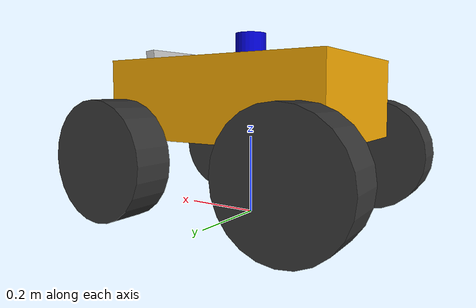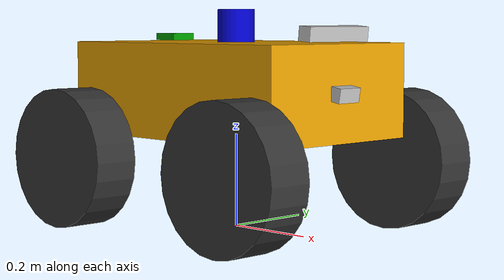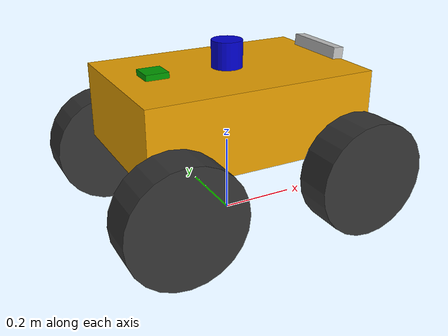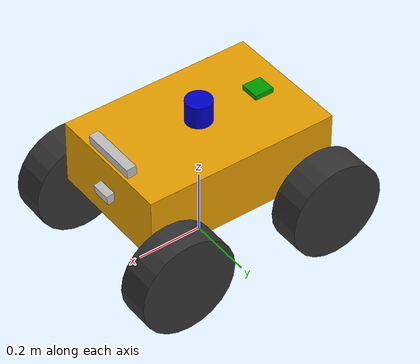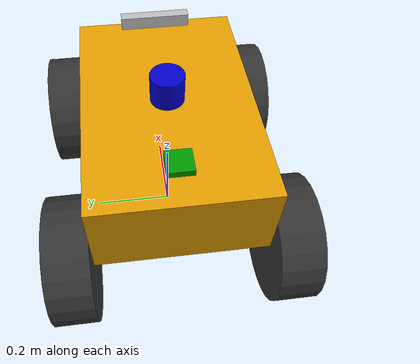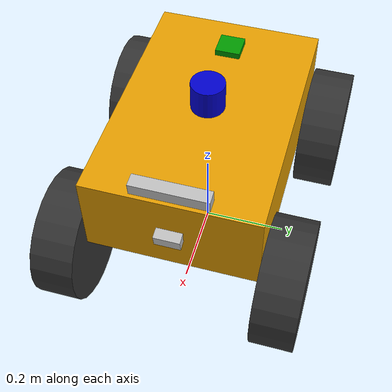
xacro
<?xml version="1.0"?>
<robot name="TARS" xmlns:xacro="http://www.ros.org/wiki/xacro">

  <!-- ================= BASE LINK ================= -->
  <link name="base_link">
    <inertial>
      <mass value="2.0"/>
      <origin xyz="0 0 0.30"/>
      <inertia ixx="0.0333" ixy="0" ixz="0"
               iyy="0.0667" iyz="0"
               izz="0.0867"/>
    </inertial>
    <visual>
      <origin xyz="0 0 0.30"/>
      <geometry>
        <box size="0.6 0.4 0.2"/>
      </geometry>
    </visual>
    <collision>
      <origin xyz="0 0 0.30"/>
      <geometry>
        <box size="0.6 0.4 0.2"/>
      </geometry>
    </collision>
  </link>

  <!-- ================= WHEEL LINKS ================= -->

  <!-- FRONT LEFT -->
  <link name="front_left_wheel">
    <inertial>
      <mass value="0.5"/>
      <origin xyz="0 0 0"/>
      <inertia ixx="0.00292" ixy="0" ixz="0"
               iyy="0.00292" iyz="0"
               izz="0.00563"/>
    </inertial>
    <visual>
      <origin rpy="1.57 0 0"/>
      <geometry>
        <cylinder radius="0.15" length="0.1"/>
      </geometry>
      <material name="darkgrey">
        <color rgba="0.2 0.2 0.2 1"/>
      </material>
    </visual>
    <collision>
      <origin rpy="1.57 0 0"/>
      <geometry>
        <cylinder radius="0.15" length="0.1"/>
      </geometry>
    </collision>
  </link>

  <!-- FRONT RIGHT -->
  <link name="front_right_wheel">
    <inertial>
      <mass value="0.5"/>
      <origin xyz="0 0 0"/>
      <inertia ixx="0.00292" ixy="0" ixz="0"
               iyy="0.00292" iyz="0"
               izz="0.00563"/>
    </inertial>
    <visual>
      <origin rpy="1.57 0 0"/>
      <geometry>
        <cylinder radius="0.15" length="0.1"/>
      </geometry>
      <material name="darkgrey">
        <color rgba="0.2 0.2 0.2 1"/>
      </material>
    </visual>
    <collision>
      <origin rpy="1.57 0 0"/>
      <geometry>
        <cylinder radius="0.15" length="0.1"/>
      </geometry>
    </collision>
  </link>

  <!-- REAR LEFT -->
  <link name="rear_left_wheel">
    <inertial>
      <mass value="0.5"/>
      <origin xyz="0 0 0"/>
      <inertia ixx="0.00292" ixy="0" ixz="0"
               iyy="0.00292" iyz="0"
               izz="0.00563"/>
    </inertial>
    <visual>
      <origin rpy="1.57 0 0"/>
      <geometry>
        <cylinder radius="0.15" length="0.1"/>
      </geometry>
      <material name="darkgrey">
        <color rgba="0.2 0.2 0.2 1"/>
      </material>
    </visual>
    <collision>
      <origin rpy="1.57 0 0"/>
      <geometry>
        <cylinder radius="0.15" length="0.1"/>
      </geometry>
    </collision>
  </link>

  <!-- REAR RIGHT -->
  <link name="rear_right_wheel">
    <inertial>
      <mass value="0.5"/>
      <origin xyz="0 0 0"/>
      <inertia ixx="0.00292" ixy="0" ixz="0"
               iyy="0.00292" iyz="0"
               izz="0.00563"/>
    </inertial>
    <visual>
      <origin rpy="1.57 0 0"/>
      <geometry>
        <cylinder radius="0.15" length="0.1"/>
      </geometry>
      <material name="darkgrey">
        <color rgba="0.2 0.2 0.2 1"/>
      </material>
    </visual>
    <collision>
      <origin rpy="1.57 0 0"/>
      <geometry>
        <cylinder radius="0.15" length="0.1"/>
      </geometry>
    </collision>
  </link>

  <!-- ================================================================
       SENSOR LINKS
  ================================================================ -->

  <link name="lidar_link">
    <inertial>
      <mass value="0.35"/>
      <origin xyz="0 0 0"/>
      <inertia ixx="0.001" ixy="0" ixz="0"
               iyy="0.001" iyz="0"
               izz="0.001"/>
    </inertial>
    <visual>
      <origin xyz="0 0 0"/>
      <geometry>
        <cylinder radius="0.04" length="0.07"/>
      </geometry>
      <material name="blue">
        <color rgba="0 0 0.8 1"/>
      </material>
    </visual>
    <collision>
      <origin xyz="0 0 0"/>
      <geometry>
        <cylinder radius="0.04" length="0.07"/>
      </geometry>
    </collision>
  </link>

  <link name="imu_link">
    <inertial>
      <mass value="0.05"/>
      <origin xyz="0 0 0"/>
      <inertia ixx="0.0001" ixy="0" ixz="0"
               iyy="0.0001" iyz="0"
               izz="0.0001"/>
    </inertial>
    <visual>
      <origin xyz="0 0 0"/>
      <geometry>
        <box size="0.04 0.04 0.01"/>
      </geometry>
      <material name="green">
        <color rgba="0 0.6 0 1"/>
      </material>
    </visual>
    <collision>
      <origin xyz="0 0 0"/>
      <geometry>
        <box size="0.04 0.04 0.01"/>
      </geometry>
    </collision>
  </link>

  <!-- ── GPS ────────────────────────────────────────────────────────
       Placed at rear-top of chassis for maximum open sky exposure
  ──────────────────────────────────────────────────────────────── -->

  <link name="gps_link">
    <inertial>
      <mass value="0.08"/>
      <origin xyz="0 0 0"/>
      <inertia ixx="0.0001" ixy="0" ixz="0"
               iyy="0.0001" iyz="0"
               izz="0.0001"/>
    </inertial>
    <visual>
      <origin xyz="0 0 0"/>
      <geometry>
        <box size="0.06 0.06 0.015"/>
      </geometry>
      <material name="green">
        <color rgba="0 0.6 0 1"/>
      </material>
    </visual>
    <collision>
      <origin xyz="0 0 0"/>
      <geometry>
        <box size="0.06 0.06 0.015"/>
      </geometry>
    </collision>
  </link>

  <link name="zed2_link">
    <inertial>
      <mass value="0.16"/>
      <origin xyz="0 0 0"/>
      <inertia ixx="0.0001" ixy="0" ixz="0"
               iyy="0.0001" iyz="0"
               izz="0.0001"/>
    </inertial>
    <visual>
      <origin xyz="0 0 0"/>
      <geometry>
        <box size="0.03 0.175 0.03"/>
      </geometry>
      <material name="silver">
        <color rgba="0.75 0.75 0.75 1"/>
      </material>
    </visual>
    <collision>
      <origin xyz="0 0 0"/>
      <geometry>
        <box size="0.03 0.175 0.03"/>
      </geometry>
    </collision>
  </link>

  <!-- ZED2 left lens (+Y, 60mm from centre) -->
  <link name="zed2_left_camera_link">
    <inertial>
      <mass value="0.01"/>
      <origin xyz="0 0 0"/>
      <inertia ixx="0.00001" ixy="0" ixz="0"
               iyy="0.00001" iyz="0"
               izz="0.00001"/>
    </inertial>
    <visual>
      <geometry><sphere radius="0.012"/></geometry>
      <material name="dark_blue">
        <color rgba="0 0 0.5 1"/>
      </material>
    </visual>
  </link>

  <!-- ZED2 right lens (-Y, 60mm from centre) -->
  <link name="zed2_right_camera_link">
    <inertial>
      <mass value="0.01"/>
      <origin xyz="0 0 0"/>
      <inertia ixx="0.00001" ixy="0" ixz="0"
               iyy="0.00001" iyz="0"
               izz="0.00001"/>
    </inertial>
    <visual>
      <geometry><sphere radius="0.012"/></geometry>
      <material name="dark_blue">
        <color rgba="0 0 0.5 1"/>
      </material>
    </visual>
  </link>

  <!-- ── Front Mono Camera ─────────────────────────────────────────
       Front bumper, mid-height, 10° nose-down
  ──────────────────────────────────────────────────────────────── -->

  <link name="front_camera_link">
    <inertial>
      <mass value="0.05"/>
      <origin xyz="0 0 0"/>
      <inertia ixx="0.0001" ixy="0" ixz="0"
               iyy="0.0001" iyz="0"
               izz="0.0001"/>
    </inertial>
    <visual>
      <origin xyz="0 0 0"/>
      <geometry>
        <box size="0.025 0.06 0.03"/>
      </geometry>
      <material name="silver">
        <color rgba="0.75 0.75 0.75 1"/>
      </material>
    </visual>
    <collision>
      <origin xyz="0 0 0"/>
      <geometry>
        <box size="0.025 0.06 0.03"/>
      </geometry>
    </collision>
  </link>

  <!-- ================================================================
       WHEEL JOINTS
  ================================================================ -->

  <joint name="front_left_wheel_joint" type="continuous">
    <parent link="base_link"/>
    <child  link="front_left_wheel"/>
    <origin xyz="0.25 0.251 0.15"/>
    <axis xyz="0 1 0"/>
    <dynamics damping="1.0" friction="0.5"/>
    <limit effort="50" velocity="50"/>
  </joint>

  <joint name="front_right_wheel_joint" type="continuous">
    <parent link="base_link"/>
    <child  link="front_right_wheel"/>
    <origin xyz="0.25 -0.251 0.15"/>
    <axis xyz="0 1 0"/>
    <dynamics damping="1.0" friction="0.5"/>
    <limit effort="50" velocity="50"/>
  </joint>

  <joint name="rear_left_wheel_joint" type="continuous">
    <parent link="base_link"/>
    <child  link="rear_left_wheel"/>
    <origin xyz="-0.25 0.251 0.15"/>
    <axis xyz="0 1 0"/>
    <dynamics damping="1.0" friction="0.5"/>
    <limit effort="50" velocity="50"/>
  </joint>

  <joint name="rear_right_wheel_joint" type="continuous">
    <parent link="base_link"/>
    <child  link="rear_right_wheel"/>
    <origin xyz="-0.25 -0.251 0.15"/>
    <axis xyz="0 1 0"/>
    <dynamics damping="1.0" friction="0.5"/>
    <limit effort="50" velocity="50"/>
  </joint>

  <!-- ================================================================
       SENSOR JOINTS  (all fixed — sensors don't move)
  ================================================================ -->

  <!-- LiDAR: top-centre, sits 0.035 above chassis top (half cylinder height) -->

  <joint name="lidar_joint" type="fixed">
    <parent link="base_link"/>
    <child  link="lidar_link"/>
    <origin xyz="0 0 0.435" rpy="0 0 0"/>
  </joint>

  <!-- IMU: chassis centre height — closest to CoM, minimises vibration -->

  <joint name="imu_joint" type="fixed">
    <parent link="base_link"/>
    <child  link="imu_link"/>
    <origin xyz="0 0 0.30" rpy="0 0 0"/>
  </joint>

  <!-- GPS: rear-top of chassis — maximum sky exposure away from electronics -->

  <joint name="gps_joint" type="fixed">
    <parent link="base_link"/>
    <child  link="gps_link"/>
    <origin xyz="-0.20 0 0.41" rpy="0 0 0"/>
  </joint>

  <!-- ZED2 housing: front-top, 5° nose-down for near-ground depth coverage -->

  <joint name="zed2_joint" type="fixed">
    <parent link="base_link"/>
    <child  link="zed2_link"/>
    <origin xyz="0.28 0 0.42" rpy="0 0.087 0"/>
  </joint>

  <!-- ZED2 left lens: +60mm in Y from ZED2 housing centre -->

  <joint name="zed2_left_camera_joint" type="fixed">
    <parent link="zed2_link"/>
    <child  link="zed2_left_camera_link"/>
    <origin xyz="0 0.06 0" rpy="0 0 0"/>
  </joint>

  <!-- ZED2 right lens: -60mm in Y from ZED2 housing centre -->

  <joint name="zed2_right_camera_joint" type="fixed">
    <parent link="zed2_link"/>
    <child  link="zed2_right_camera_link"/>
    <origin xyz="0 -0.06 0" rpy="0 0 0"/>
  </joint>

  <!-- Front camera: front face, mid chassis height, 10° nose-down -->

  <joint name="front_camera_joint" type="fixed">
    <parent link="base_link"/>
    <child  link="front_camera_link"/>
    <origin xyz="0.31 0 0.30" rpy="0 0.1745 0"/>
  </joint>

  <!-- ================================================================
       GAZEBO — WHEEL COLOURS
  ================================================================ -->

  <gazebo reference="front_left_wheel">
    <material>Gazebo/Grey</material>
  </gazebo>
  <gazebo reference="front_right_wheel">
    <material>Gazebo/Grey</material>
  </gazebo>
  <gazebo reference="rear_left_wheel">
    <material>Gazebo/Grey</material>
  </gazebo>
  <gazebo reference="rear_right_wheel">
    <material>Gazebo/Grey</material>
  </gazebo>

  <!-- ================================================================
       GAZEBO — WHEEL FRICTION / CONTACT
  ================================================================ -->

  <gazebo reference="front_left_wheel">
    <collision>
      <surface>
        <friction>
          <ode><mu1>1.0</mu1><mu2>1.0</mu2></ode>
        </friction>
        <contact>
          <ode>
            <kp>100000.0</kp><kd>10.0</kd>
            <min_depth>0.001</min_depth><max_vel>0.1</max_vel>
          </ode>
        </contact>
      </surface>
    </collision>
  </gazebo>

  <gazebo reference="front_right_wheel">
    <collision>
      <surface>
        <friction>
          <ode><mu1>1.0</mu1><mu2>1.0</mu2></ode>
        </friction>
        <contact>
          <ode>
            <kp>100000.0</kp><kd>10.0</kd>
            <min_depth>0.001</min_depth><max_vel>0.1</max_vel>
          </ode>
        </contact>
      </surface>
    </collision>
  </gazebo>

  <gazebo reference="rear_left_wheel">
    <collision>
      <surface>
        <friction>
          <ode><mu1>1.0</mu1><mu2>1.0</mu2></ode>
        </friction>
        <contact>
          <ode>
            <kp>100000.0</kp><kd>10.0</kd>
            <min_depth>0.001</min_depth><max_vel>0.1</max_vel>
          </ode>
        </contact>
      </surface>
    </collision>
  </gazebo>

  <gazebo reference="rear_right_wheel">
    <collision>
      <surface>
        <friction>
          <ode><mu1>1.0</mu1><mu2>1.0</mu2></ode>
        </friction>
        <contact>
          <ode>
            <kp>100000.0</kp><kd>10.0</kd>
            <min_depth>0.001</min_depth><max_vel>0.1</max_vel>
          </ode>
        </contact>
      </surface>
    </collision>
  </gazebo>

  <gazebo reference="lidar_link">
    <sensor type="ray" name="lidar_sensor">
      <pose>0 0 0 0 0 0</pose>
      <visualize>false</visualize>
      <always_on>true</always_on>
      <update_rate>15</update_rate>
      <ray>
        <scan>
          <horizontal>
            <samples>720</samples>
            <resolution>1</resolution>
            <min_angle>-3.14159</min_angle>
            <max_angle>3.14159</max_angle>
          </horizontal>
        </scan>
        <range>
          <min>0.10</min>
          <max>30.0</max>
          <resolution>0.01</resolution>
        </range>
        <noise>
          <type>gaussian</type>
          <mean>0.0</mean>
          <stddev>0.01</stddev>
        </noise>
      </ray>
      <plugin name="lidar_plugin" filename="libgazebo_ros_laser.so">
        <topicName>/scan</topicName>
        <frameName>lidar_link</frameName>
      </plugin>
    </sensor>
    <material>Gazebo/Blue</material>
  </gazebo>

  <!-- ================================================================
       GAZEBO — IMU PLUGIN
       200 Hz → /imu/data
  ================================================================ -->

  <gazebo reference="imu_link">
    <gravity>true</gravity>
    <sensor name="imu_sensor" type="imu">
      <always_on>true</always_on>
      <update_rate>200</update_rate>
      <visualize>true</visualize>
      <imu>
        <angular_velocity>
          <x><noise type="gaussian"><mean>0.0</mean><stddev>0.009</stddev></noise></x>
          <y><noise type="gaussian"><mean>0.0</mean><stddev>0.009</stddev></noise></y>
          <z><noise type="gaussian"><mean>0.0</mean><stddev>0.009</stddev></noise></z>
        </angular_velocity>
        <linear_acceleration>
          <x><noise type="gaussian"><mean>0.0</mean><stddev>0.021</stddev></noise></x>
          <y><noise type="gaussian"><mean>0.0</mean><stddev>0.021</stddev></noise></y>
          <z><noise type="gaussian"><mean>0.0</mean><stddev>0.021</stddev></noise></z>
        </linear_acceleration>
      </imu>
      <plugin filename="libgazebo_ros_imu_sensor.so" name="imu_plugin">
        <topicName>/imu/data</topicName>
        <bodyName>imu_link</bodyName>
        <updateRateHZ>200.0</updateRateHZ>
        <frameName>imu_link</frameName>
        <initialOrientationAsReference>false</initialOrientationAsReference>
      </plugin>
    </sensor>
    <material>Gazebo/Green</material>
  </gazebo>

  <!-- ================================================================
       GAZEBO — GPS PLUGIN
       10 Hz → /gps/fix
  ================================================================ -->

  <gazebo reference="gps_link">
    <sensor type="gps" name="gps_sensor">
      <always_on>true</always_on>
      <update_rate>10</update_rate>
      <gps>
        <position_sensing>
          <horizontal>
            <noise type="gaussian"><mean>0.0</mean><stddev>0.5</stddev></noise>
          </horizontal>
          <vertical>
            <noise type="gaussian"><mean>0.0</mean><stddev>1.0</stddev></noise>
          </vertical>
        </position_sensing>
      </gps>
      <plugin name="gps_plugin" filename="libgazebo_ros_gps_sensor.so">
        <robotNamespace>/</robotNamespace>
        <topicName>/gps/fix</topicName>
        <velocityTopicName>/gps/vel</velocityTopicName>
        <frameName>gps_link</frameName>
        <referenceLatitude>12.9716</referenceLatitude>
        <referenceLongitude>77.5946</referenceLongitude>
        <referenceAltitude>920.0</referenceAltitude>
      </plugin>
    </sensor>
    <material>Gazebo/Green</material>
  </gazebo>

  <gazebo reference="zed2_left_camera_link">
    <sensor type="camera" name="zed2_left">
      <always_on>true</always_on>
      <update_rate>30</update_rate>
      <visualize>false</visualize>
      <camera name="left">
        <horizontal_fov>1.8</horizontal_fov>
        <image>
          <width>1280</width>
          <height>720</height>
          <format>R8G8B8</format>
        </image>
        <clip><near>0.02</near><far>300</far></clip>
        <noise>
          <type>gaussian</type><mean>0.0</mean><stddev>0.007</stddev>
        </noise>
      </camera>
      <plugin name="zed2_left_plugin" filename="libgazebo_ros_camera.so">
        <cameraName>zed2/left</cameraName>
        <imageTopicName>image_raw</imageTopicName>
        <cameraInfoTopicName>camera_info</cameraInfoTopicName>
        <frameName>zed2_left_camera_link</frameName>
        <hackBaseline>0.0</hackBaseline>
      </plugin>
    </sensor>
    <material>Gazebo/DarkGrey</material>
  </gazebo>

  <gazebo reference="zed2_right_camera_link">
    <sensor type="camera" name="zed2_right">
      <always_on>true</always_on>
      <update_rate>30</update_rate>
      <visualize>false</visualize>
      <camera name="right">
        <horizontal_fov>1.8</horizontal_fov>
        <image>
          <width>1280</width>
          <height>720</height>
          <format>R8G8B8</format>
        </image>
        <clip><near>0.02</near><far>300</far></clip>
        <noise>
          <type>gaussian</type><mean>0.0</mean><stddev>0.007</stddev>
        </noise>
      </camera>
      <plugin name="zed2_right_plugin" filename="libgazebo_ros_camera.so">
        <cameraName>zed2/right</cameraName>
        <imageTopicName>image_raw</imageTopicName>
        <cameraInfoTopicName>camera_info</cameraInfoTopicName>
        <frameName>zed2_right_camera_link</frameName>
        <hackBaseline>0.0</hackBaseline>
      </plugin>
    </sensor>
    <material>Gazebo/DarkGrey</material>
  </gazebo>

  <gazebo reference="zed2_link">
    <sensor type="depth" name="zed2_depth_sensor">
      <always_on>true</always_on>
      <update_rate>15</update_rate>
      <visualize>false</visualize>
      <camera name="depth">
        <horizontal_fov>1.8</horizontal_fov>
        <image>
          <width>640</width>
          <height>360</height>
          <format>R32F</format>
        </image>
        <clip><near>0.2</near><far>20.0</far></clip>
      </camera>
      <plugin name="zed2_depth_plugin" filename="libgazebo_ros_openni_kinect.so">
        <robotNamespace>/</robotNamespace>
        <baseline>0.12</baseline>
        <alwaysOn>true</alwaysOn>
        <updateRate>15.0</updateRate>
        <cameraName>zed2</cameraName>
        <depthImageTopicName>/zed2/depth/depth_registered</depthImageTopicName>
        <depthImageInfoTopicName>/zed2/depth/camera_info</depthImageInfoTopicName>
        <pointCloudTopicName>/zed2/point_cloud/cloud_registered</pointCloudTopicName>
        <frameName>zed2_left_camera_link</frameName>
        <pointCloudCutoff>0.2</pointCloudCutoff>
        <pointCloudCutoffMax>20.0</pointCloudCutoffMax>
      </plugin>
    </sensor>
  </gazebo>

  <gazebo reference="front_camera_link">
    <sensor type="camera" name="front_camera">
      <always_on>true</always_on>
      <update_rate>30</update_rate>
      <visualize>false</visualize>
      <camera name="front_camera">
        <horizontal_fov>1.3962634</horizontal_fov>
        <image>
          <width>1280</width>
          <height>720</height>
          <format>R8G8B8</format>
        </image>
        <clip><near>0.05</near><far>100</far></clip>
        <noise>
          <type>gaussian</type><mean>0.0</mean><stddev>0.005</stddev>
        </noise>
      </camera>
      <plugin name="front_cam_plugin" filename="libgazebo_ros_camera.so">
        <cameraName>front_camera</cameraName>
        <imageTopicName>image_raw</imageTopicName>
        <cameraInfoTopicName>camera_info</cameraInfoTopicName>
        <frameName>front_camera_link</frameName>
        <hackBaseline>0.0</hackBaseline>
      </plugin>
    </sensor>
    <material>Gazebo/Grey</material>
  </gazebo>

  <gazebo>
    <plugin name="diff_drive" filename="libgazebo_ros_diff_drive.so">
      <ros>
      	<namespace>/tars</namespace>
      </ros>
      <num_wheel_pairs>2</num_wheel_pairs>

      <left_joint>front_left_wheel_joint</left_joint>
      <left_joint>rear_left_wheel_joint</left_joint>
      <right_joint>front_right_wheel_joint</right_joint>
      <right_joint>rear_right_wheel_joint</right_joint>

      <wheel_separation>0.502</wheel_separation>
      <wheel_diameter>0.30</wheel_diameter>

      <max_wheel_torque>10</max_wheel_torque>
      <max_wheel_acceleration>1.0</max_wheel_acceleration>

      <command_topic>cmd_vel</command_topic>
      <odometry_topic>odom</odometry_topic>
      <odometry_frame>odom</odometry_frame>
      <robot_base_frame>base_link</robot_base_frame>

      <publish_odom>true</publish_odom>
      <publish_odom_tf>true</publish_odom_tf>
      <publish_wheel_tf>false</publish_wheel_tf>
    </plugin>
  </gazebo>

</robot>
